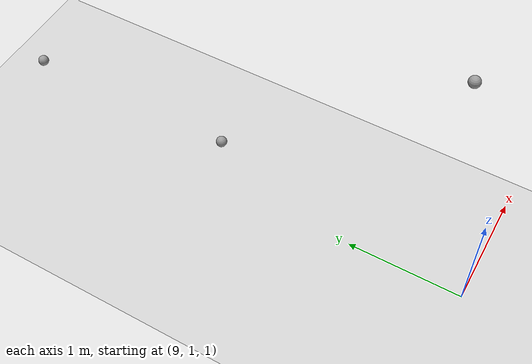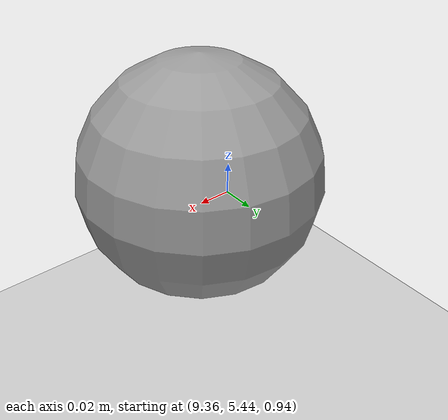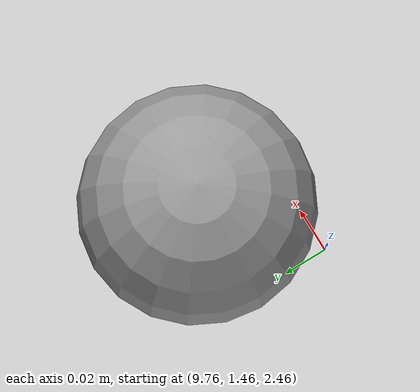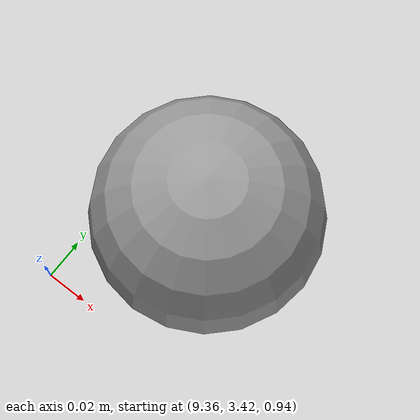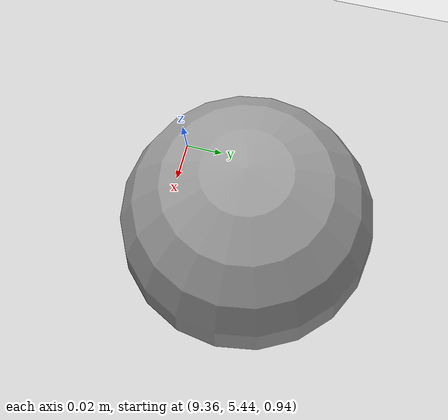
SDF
<sdf version="1.6">
 <world name="default">
  <include><uri>model://room</uri></include>
  <include><uri>model://ground_plane</uri></include>
  <include><uri>model://sun</uri></include>
  <gravity>0 0 -9.8</gravity>
  <magnetic_field>6e-06 2.3e-05 -4.2e-05</magnetic_field>
  <atmosphere type="adiabatic"/>
  <physics name="default_physics" default="0" type="ode">
   <max_step_size>0.001</max_step_size>
   <real_time_factor>1</real_time_factor>
   <real_time_update_rate>1000</real_time_update_rate>
  </physics>
  <scene><ambient>0.4 0.4 0.4 1</ambient><background>0.7 0.7 0.7 1</background><shadows>1</shadows></scene>
  <spherical_coordinates>
   <surface_model>EARTH_WGS84</surface_model>
   <latitude_deg>0</latitude_deg>
   <longitude_deg>0</longitude_deg>
   <elevation>0</elevation>
   <heading_deg>0</heading_deg>
  </spherical_coordinates>
  <model name="ball_0">
   <pose>9.8 1.5 2.5 0 -0 0</pose>
   <link name="ball_0::link">
    <inertial>
     <mass>1</mass>
     <inertia><ixx>0.1</ixx><ixy>0</ixy><ixz>0</ixz><iyy>0.1</iyy><iyz>0</iyz><izz>0.1</izz></inertia>
    </inertial>
    <collision name="collision">
     <geometry><sphere><radius>0.05</radius></sphere></geometry>
     <surface>
      <bounce><restitution_coefficient>1</restitution_coefficient><threshold>0</threshold></bounce>
      <contact><ode><max_vel>10</max_vel></ode></contact>
     </surface>
    </collision>
    <visual name="visual">
     <geometry><sphere><radius>0.05</radius></sphere></geometry>
     <material>
      <script><name>Gazebo/Grey</name><uri>file://media/materials/scripts/gazebo.material</uri></script>
     </material>
    </visual>
    <gravity>0</gravity>
   </link>
  </model>
  <model name="ball_1">
   <pose>9.41075 3.47471 1 0 -0 0</pose>
   <link name="ball_1::link">
    <inertial>
     <mass>1</mass>
     <inertia><ixx>0.1</ixx><ixy>0</ixy><ixz>0</ixz><iyy>0.1</iyy><iyz>0</iyz><izz>0.1</izz></inertia>
    </inertial>
    <collision name="collision">
     <geometry><sphere><radius>0.05</radius></sphere></geometry>
     <surface>
      <bounce><restitution_coefficient>1</restitution_coefficient><threshold>0</threshold></bounce>
      <contact><ode><max_vel>10</max_vel></ode></contact>
     </surface>
    </collision>
    <visual name="visual">
     <geometry><sphere><radius>0.05</radius></sphere></geometry>
     <material>
      <script><name>Gazebo/Grey</name><uri>file://media/materials/scripts/gazebo.material</uri></script>
     </material>
    </visual>
    <gravity>0</gravity>
   </link>
  </model>
  <model name="ball_2">
   <pose>9.41808 5.48848 1 0 -0 0</pose>
   <link name="ball_2::link">
    <inertial>
     <mass>1</mass>
     <inertia><ixx>0.1</ixx><ixy>0</ixy><ixz>0</ixz><iyy>0.1</iyy><iyz>0</iyz><izz>0.1</izz></inertia>
    </inertial>
    <collision name="collision">
     <geometry><sphere><radius>0.05</radius></sphere></geometry>
     <surface>
      <bounce><restitution_coefficient>1</restitution_coefficient><threshold>0</threshold></bounce>
      <friction><ode><mu>100000</mu><mu2>-1000</mu2></ode></friction>
      <contact><ode><max_vel>10</max_vel></ode></contact>
     </surface>
    </collision>
    <visual name="visual">
     <geometry><sphere><radius>0.05</radius></sphere></geometry>
     <material>
      <script><name>Gazebo/Grey</name><uri>file://media/materials/scripts/gazebo.material</uri></script>
     </material>
    </visual>
    <gravity>0</gravity>
   </link>
  </model>
 </world>
</sdf>

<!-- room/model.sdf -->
<sdf version="1.6">
  <model name="room">
    <static>true</static>
  </model>
</sdf>
